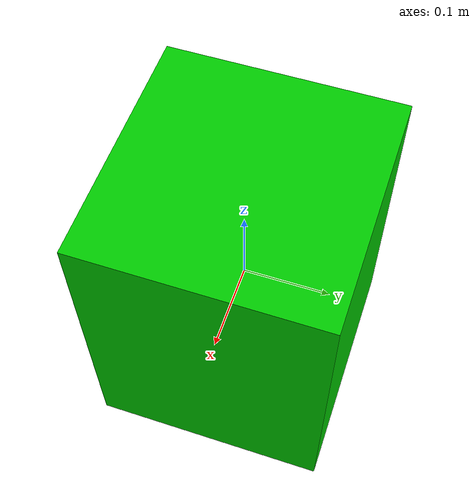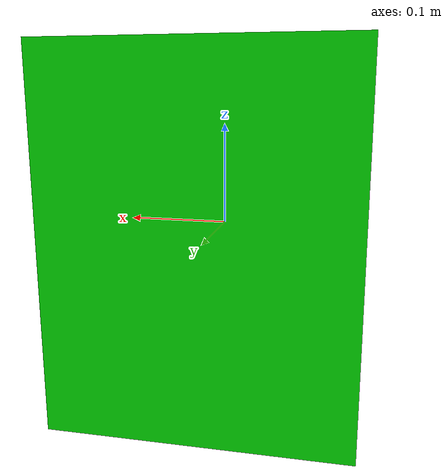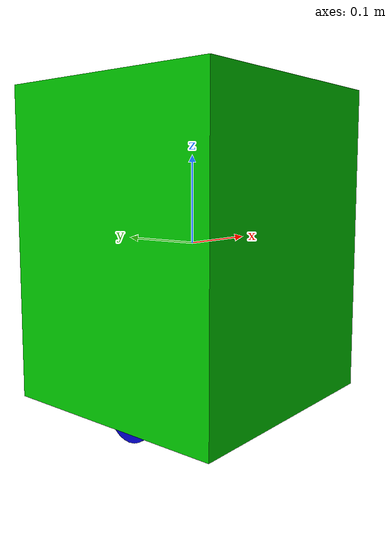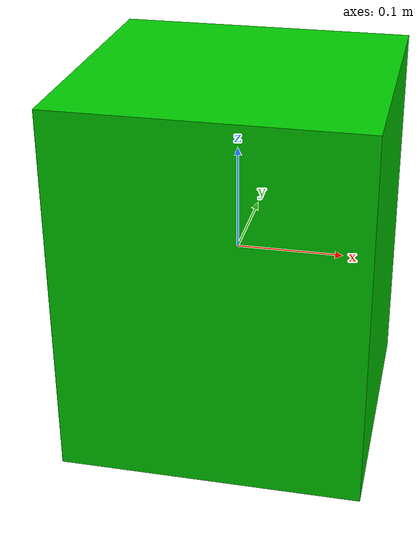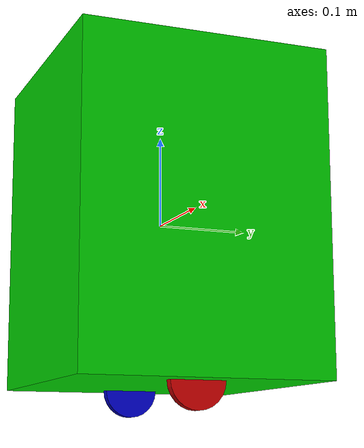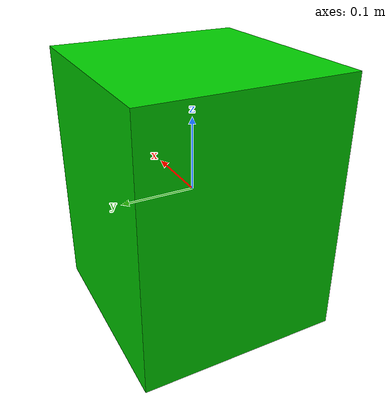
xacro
<?xml version="1.0"?>
<robot name="beagle_robot" xmlns:xacro="http://www.ros.org/wiki/xacro">
	<xacro:property name="PI" value="3.1415926535897931"/>

	<xacro:property name="robotWidth" value="0.28"/>
	<xacro:property name="robotLength" value="0.27"/>
	<xacro:property name="robotHeight" value="0.35"/>

	<xacro:property name="wheelRadius" value="0.03"/>
	<xacro:property name="wheelLength" value="0.01"/>

	<xacro:include filename="$(find beagle_description)/urdf/materials.xacro" />
	<xacro:include filename="$(find beagle_description)/urdf/robot.gazebo" />

	<link name="base_link">
		<pose>0 0 ${robotHeight} 0 0 0</pose>

		<visual>
			<geometry>
				<box size="${robotWidth} ${robotLength} ${robotHeight}"/>
			</geometry>
			<material name="green"/>
		</visual>

		<collision name='collision'>
			<geometry>
				<box size="${robotWidth} ${robotLength} ${robotHeight}" />
			</geometry>
		</collision>
		<inertial>
			<mass value="1.0"/>
			<!-- TODO -->
			<inertia ixx="0.015" iyy="0.0375" izz="0.0375" ixy="0" ixz="0" iyz="0"/>
		</inertial>
	</link>

	<link name="left_wheel">
		<visual>
			<geometry>
				<cylinder radius="${wheelRadius}" length="${wheelLength}"/>
			</geometry>
			<material name="blue"/>
		</visual>
	</link>

	<link name="right_wheel">
		<visual>
			<geometry>
				<cylinder radius="${wheelRadius}" length="${wheelLength}"/>
			</geometry>
			<material name="red"/>
		</visual>
	</link>

	<joint name="base_link_right_wheel" type="continuous">
		<origin xyz="0.1 0.0 ${-robotHeight/2}" rpy="0.0 ${PI/2} 0.0"/>
		<parent link="base_link"/>
		<child link="right_wheel"/>
		<axis xyz="0.0 0.0 1.0"/>
	</joint>

	<joint name="base_link_left_wheel" type="continuous">
		<origin xyz="-0.1 0.0 ${-robotHeight/2}" rpy="0.0 ${PI/2} 0.0"/>
		<parent link="base_link"/>
		<child link="left_wheel"/>
		<axis xyz="0.0 0.0 1.0"/>
	</joint>
</robot>

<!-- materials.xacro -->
<robot name="beagle_robot" xmlns:xacro="http://www.ros.org/wiki/xacro">
	<material name="black">
		<color rgba="0.0 0.0 0.0 1.0"/>
	</material>

	<material name="blue">
		<color rgba="0.0 0.0 0.8 1.0"/>
	</material>

	<material name="green">
		<color rgba="0.0 0.8 0.0 1.0"/>
	</material>

	<material name="grey">
		<color rgba="0.2 0.2 0.2 1.0"/>
	</material>

	<material name="orange">
		<color rgba="${255/255} ${108/255} ${10/255} 1.0"/>
	</material>

	<material name="brown">
		<color rgba="${222/255} ${207/255} ${195/255} 1.0"/>
	</material>

	<material name="red">
		<color rgba="0.8 0.0 0.0 1.0"/>
	</material>

	<material name="white">
		<color rgba="1.0 1.0 1.0 1.0"/>
	</material>
</robot>
